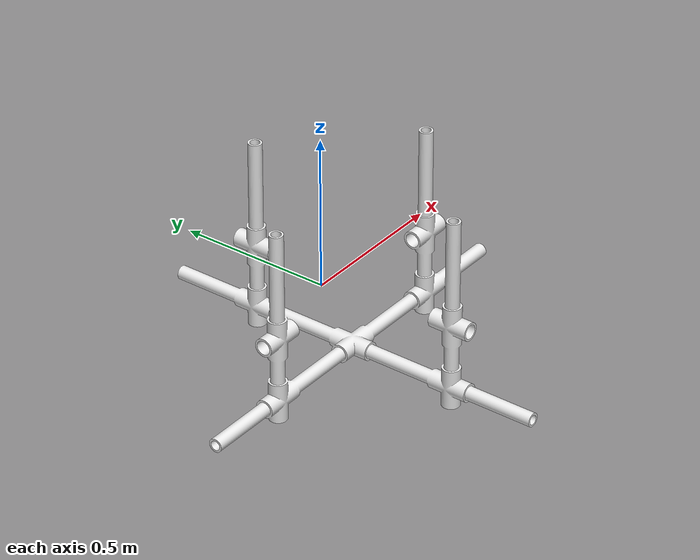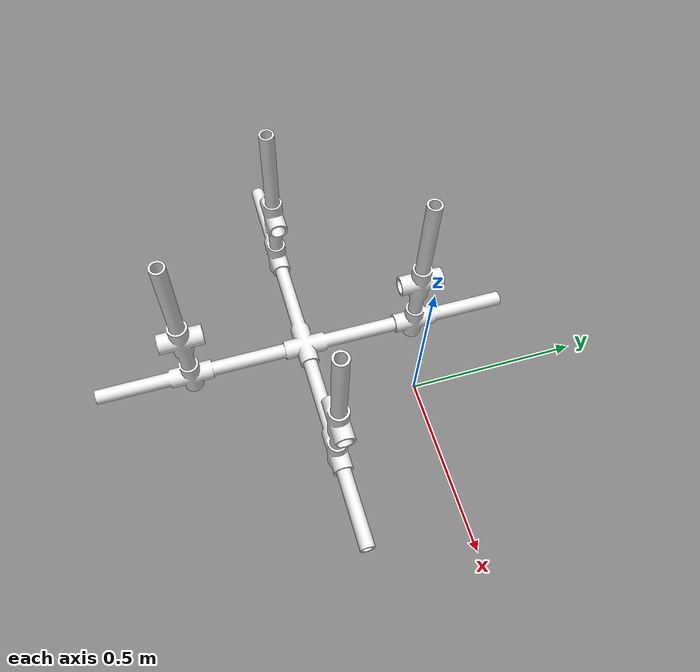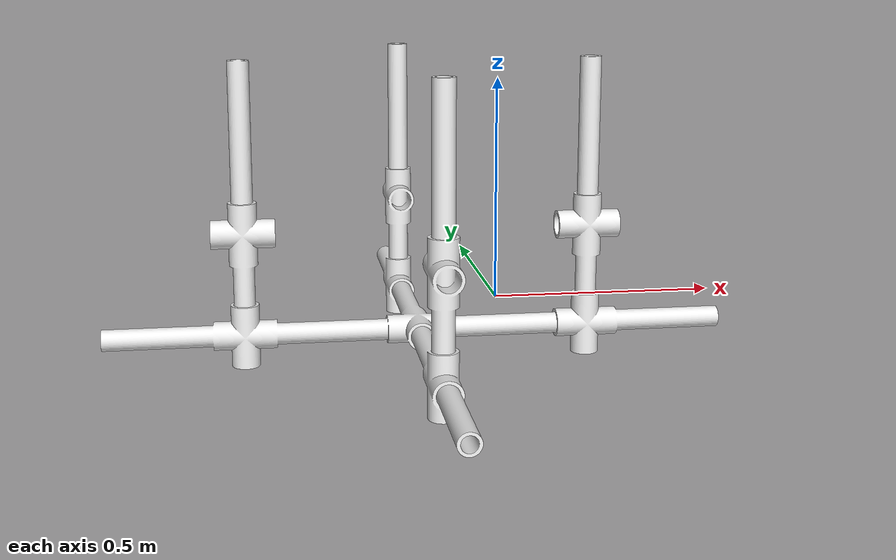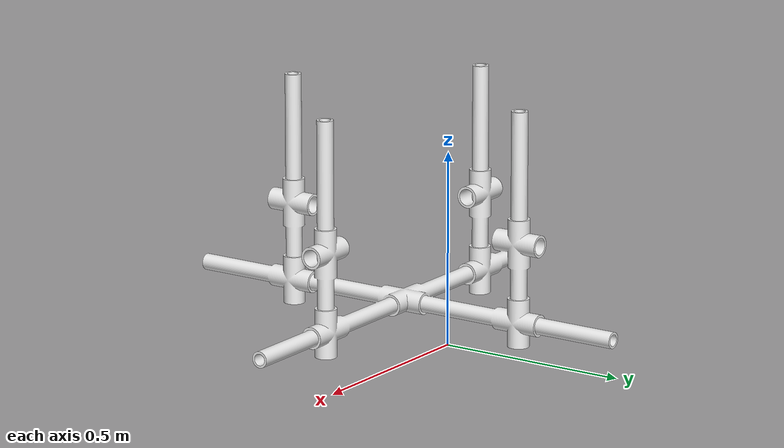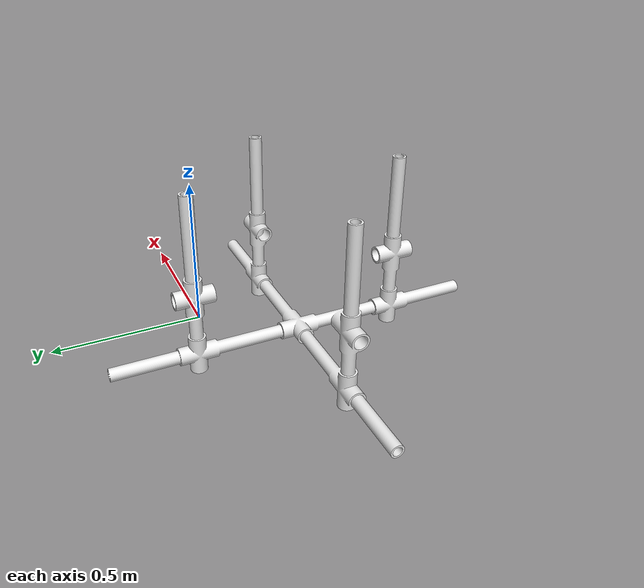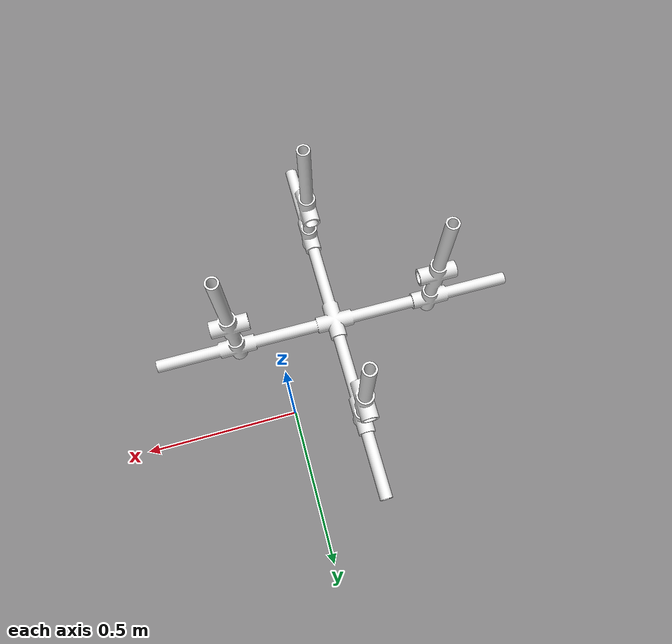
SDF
<?xml version='1.0'?>
<sdf version='1.7'>
  <model name='waypoint__seamount_false'>
    <link name='part_1'>
      <inertial>
        <pose>0 0 0 0 -0 0</pose>
        <mass>1e+12</mass>
        <inertia>
          <ixx>4.53417e+10</ixx>
          <ixy>0</ixy>
          <ixz>0</ixz>
          <iyy>5.66667e+10</iyy>
          <iyz>0</iyz>
          <izz>9.53417e+10</izz>
        </inertia>
      </inertial>
      <self_collide>0</self_collide>
      <enable_wind>0</enable_wind>
      <kinematic>0</kinematic>
      <pose>-0.087877 -0.216714 0 -1.5708 0 0</pose>
      <gravity>1</gravity>
      <is_static>1</is_static>
      <frame name='part_1_frame'>
        <pose>0 0 0 0 -0 0</pose>
      </frame>
      <visual name='assembly_visual'>
        <pose>0 0 0 0 -0 0</pose>
        <geometry>
          <mesh>
            <uri>/home/eer/Documents/Software_2024/ROS2/models/waypoint__seamount_false/waypoint__seamount_false_visual.stl</uri>
            <scale>2 2 2</scale>
          </mesh>
        </geometry>
        <material>
          <shader type='pixel'>
            <normal_map>__default__</normal_map>
          </shader>
          <script>
            <name>Gazebo/White</name>
            <uri>__default__</uri>
          </script>
          <ambient>1 1 1 1</ambient>
          <diffuse>1 1 1 1</diffuse>
          <specular>1 1 1 1</specular>
          <emissive>0 0 0 1</emissive>
        </material>
        <transparency>0</transparency>
        <cast_shadows>1</cast_shadows>
      </visual>
      <collision name='collision_4'>
        <laser_retro>0</laser_retro>
        <max_contacts>10</max_contacts>
        <pose>0 0 0 0 -0 0</pose>
        <geometry>
          <mesh>
            <uri>/home/eer/Documents/Software_2024/ROS2/models/waypoint__seamount_false/waypoint__seamount_false_collision.stl</uri>
            <scale>2 2 2</scale>
          </mesh>
        </geometry>
        <surface>
          <friction>
            <ode>
              <mu>1</mu>
              <mu2>1</mu2>
              <fdir1>0 0 0</fdir1>
              <slip1>0</slip1>
              <slip2>0</slip2>
            </ode>
            <torsional>
              <coefficient>1</coefficient>
              <patch_radius>0</patch_radius>
              <surface_radius>0</surface_radius>
              <use_patch_radius>1</use_patch_radius>
              <ode>
                <slip>0</slip>
              </ode>
            </torsional>
          </friction>
          <bounce>
            <restitution_coefficient>0</restitution_coefficient>
            <threshold>1e+06</threshold>
          </bounce>
          <contact>
            <collide_without_contact>0</collide_without_contact>
            <collide_without_contact_bitmask>1</collide_without_contact_bitmask>
            <collide_bitmask>1</collide_bitmask>
            <ode>
              <soft_cfm>0</soft_cfm>
              <soft_erp>0.2</soft_erp>
              <kp>1e+13</kp>
              <kd>1</kd>
              <max_vel>0.01</max_vel>
              <min_depth>0</min_depth>
            </ode>
            <bullet>
              <split_impulse>1</split_impulse>
              <split_impulse_penetration_threshold>-0.01</split_impulse_penetration_threshold>
              <soft_cfm>0</soft_cfm>
              <soft_erp>0.2</soft_erp>
              <kp>1e+13</kp>
              <kd>1</kd>
            </bullet>
          </contact>
        </surface>
      </collision>
    </link>
    <static>1</static>
    <allow_auto_disable>1</allow_auto_disable>
  </model>
</sdf>
